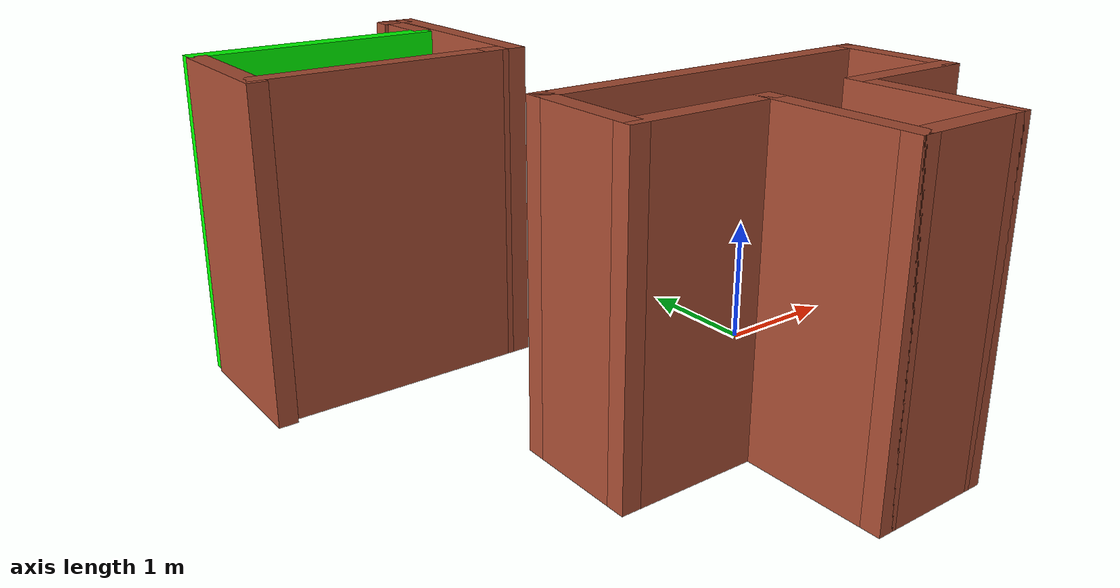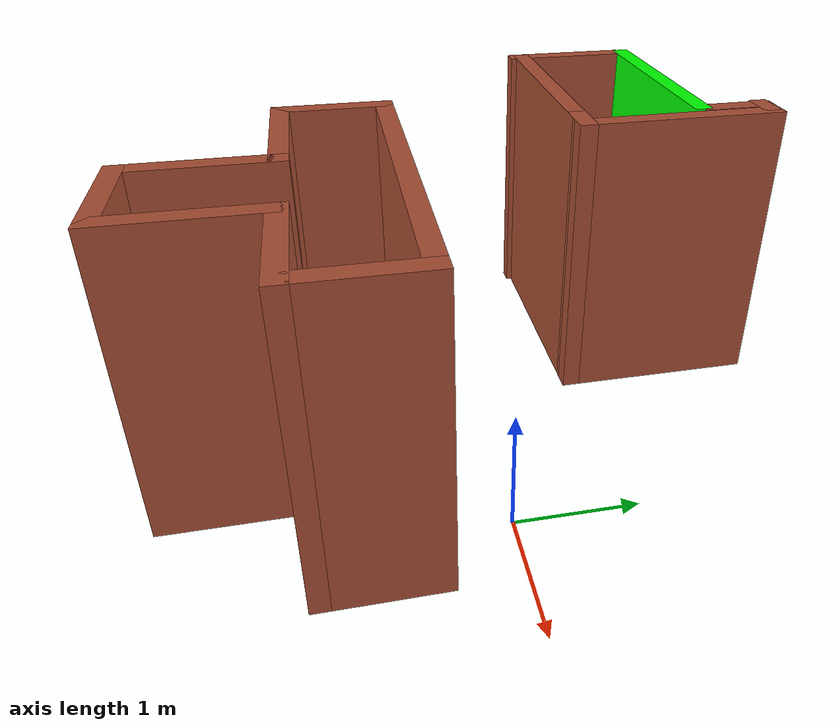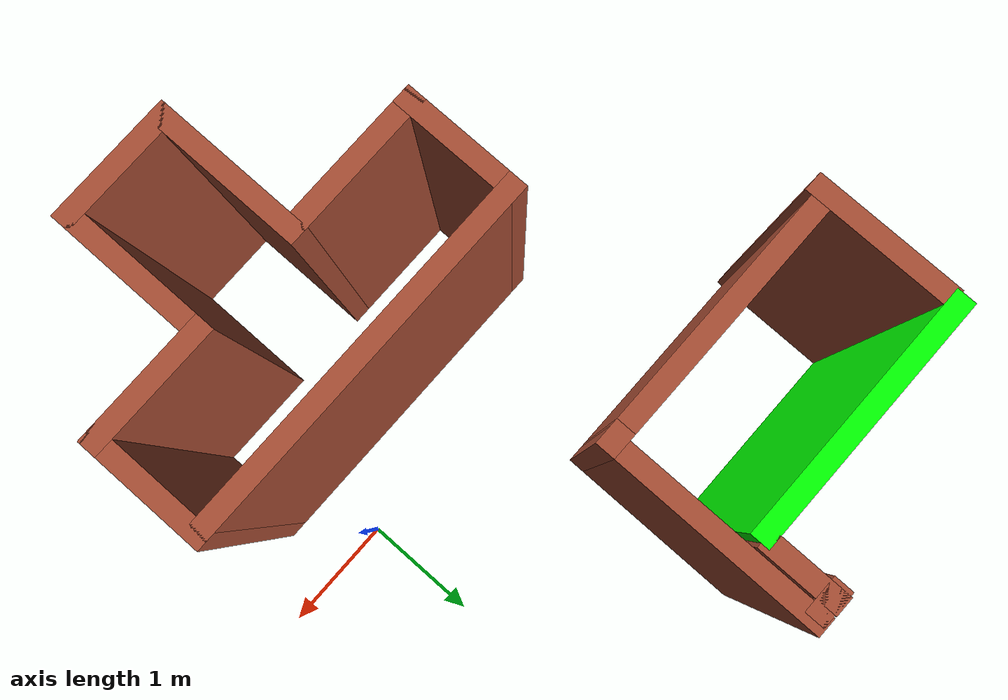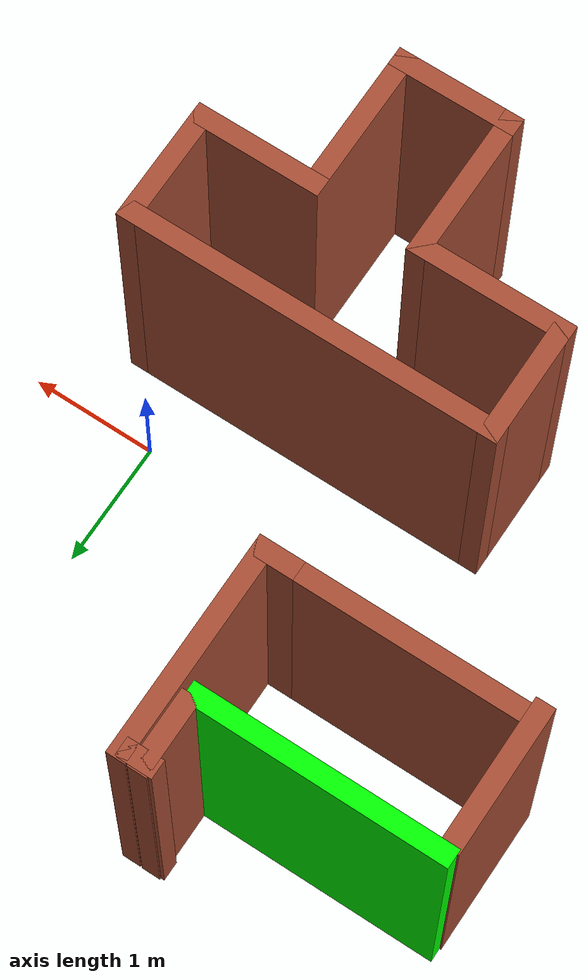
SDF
<?xml version='1.0'?>
<sdf version='1.7'>
  <model name='Floating'>
    <link name='Wall_17'>
      <pose>-1.30573 -1.98114 0 0 0 -1.5708</pose>
      <self_collide>0</self_collide>
      <enable_wind>0</enable_wind>
      <kinematic>0</kinematic>
      <visual name='Wall_17_Visual'>
        <pose>0 0 1.25 0 -0 0</pose>
        <geometry>
          <box>
            <size>1.25 0.15 2.5</size>
          </box>
        </geometry>
        <material>
          <script>
            <uri>file://media/materials/scripts/gazebo.material</uri>
            <name>Gazebo/Bricks</name>
          </script>
          <ambient>1 1 1 1</ambient>
          <shader type='pixel'/>
        </material>
        <meta>
          <layer>0</layer>
        </meta>
        <transparency>0</transparency>
        <cast_shadows>1</cast_shadows>
      </visual>
      <collision name='Wall_17_Collision'>
        <laser_retro>0</laser_retro>
        <max_contacts>10</max_contacts>
        <pose>0 0 1.25 0 -0 0</pose>
        <geometry>
          <box>
            <size>1.25 0.15 2.5</size>
          </box>
        </geometry>
        <surface>
          <friction>
            <ode>
              <mu>1</mu>
              <mu2>1</mu2>
              <fdir1>0 0 0</fdir1>
              <slip1>0</slip1>
              <slip2>0</slip2>
            </ode>
            <torsional>
              <coefficient>1</coefficient>
              <patch_radius>0</patch_radius>
              <surface_radius>0</surface_radius>
              <use_patch_radius>1</use_patch_radius>
              <ode>
                <slip>0</slip>
              </ode>
            </torsional>
          </friction>
          <bounce>
            <restitution_coefficient>0</restitution_coefficient>
            <threshold>1e+06</threshold>
          </bounce>
          <contact>
            <collide_without_contact>0</collide_without_contact>
            <collide_without_contact_bitmask>1</collide_without_contact_bitmask>
            <collide_bitmask>1</collide_bitmask>
            <ode>
              <soft_cfm>0</soft_cfm>
              <soft_erp>0.2</soft_erp>
              <kp>1e+13</kp>
              <kd>1</kd>
              <max_vel>0.01</max_vel>
              <min_depth>0</min_depth>
            </ode>
            <bullet>
              <split_impulse>1</split_impulse>
              <split_impulse_penetration_threshold>-0.01</split_impulse_penetration_threshold>
              <soft_cfm>0</soft_cfm>
              <soft_erp>0.2</soft_erp>
              <kp>1e+13</kp>
              <kd>1</kd>
            </bullet>
          </contact>
        </surface>
      </collision>
    </link>
    <link name='Wall_18'>
      <pose>-0.880733 -2.53114 0 0 -0 0</pose>
      <self_collide>0</self_collide>
      <enable_wind>0</enable_wind>
      <kinematic>0</kinematic>
      <visual name='Wall_18_Visual'>
        <pose>0 0 1.25 0 -0 0</pose>
        <geometry>
          <box>
            <size>1 0.15 2.5</size>
          </box>
        </geometry>
        <material>
          <script>
            <uri>file://media/materials/scripts/gazebo.material</uri>
            <name>Gazebo/Bricks</name>
          </script>
          <ambient>1 1 1 1</ambient>
          <shader type='pixel'/>
        </material>
        <meta>
          <layer>0</layer>
        </meta>
        <transparency>0</transparency>
        <cast_shadows>1</cast_shadows>
      </visual>
      <collision name='Wall_18_Collision'>
        <laser_retro>0</laser_retro>
        <max_contacts>10</max_contacts>
        <pose>0 0 1.25 0 -0 0</pose>
        <geometry>
          <box>
            <size>1 0.15 2.5</size>
          </box>
        </geometry>
        <surface>
          <friction>
            <ode>
              <mu>1</mu>
              <mu2>1</mu2>
              <fdir1>0 0 0</fdir1>
              <slip1>0</slip1>
              <slip2>0</slip2>
            </ode>
            <torsional>
              <coefficient>1</coefficient>
              <patch_radius>0</patch_radius>
              <surface_radius>0</surface_radius>
              <use_patch_radius>1</use_patch_radius>
              <ode>
                <slip>0</slip>
              </ode>
            </torsional>
          </friction>
          <bounce>
            <restitution_coefficient>0</restitution_coefficient>
            <threshold>1e+06</threshold>
          </bounce>
          <contact>
            <collide_without_contact>0</collide_without_contact>
            <collide_without_contact_bitmask>1</collide_without_contact_bitmask>
            <collide_bitmask>1</collide_bitmask>
            <ode>
              <soft_cfm>0</soft_cfm>
              <soft_erp>0.2</soft_erp>
              <kp>1e+13</kp>
              <kd>1</kd>
              <max_vel>0.01</max_vel>
              <min_depth>0</min_depth>
            </ode>
            <bullet>
              <split_impulse>1</split_impulse>
              <split_impulse_penetration_threshold>-0.01</split_impulse_penetration_threshold>
              <soft_cfm>0</soft_cfm>
              <soft_erp>0.2</soft_erp>
              <kp>1e+13</kp>
              <kd>1</kd>
            </bullet>
          </contact>
        </surface>
      </collision>
    </link>
    <link name='Wall_19'>
      <pose>-0.455733 -1.98114 0 0 -0 1.5708</pose>
      <self_collide>0</self_collide>
      <enable_wind>0</enable_wind>
      <kinematic>0</kinematic>
      <visual name='Wall_19_Visual'>
        <pose>0 0 1.25 0 -0 0</pose>
        <geometry>
          <box>
            <size>1.25 0.15 2.5</size>
          </box>
        </geometry>
        <material>
          <script>
            <uri>file://media/materials/scripts/gazebo.material</uri>
            <name>Gazebo/Bricks</name>
          </script>
          <ambient>1 1 1 1</ambient>
          <shader type='pixel'/>
        </material>
        <meta>
          <layer>0</layer>
        </meta>
        <transparency>0</transparency>
        <cast_shadows>1</cast_shadows>
      </visual>
      <collision name='Wall_19_Collision'>
        <laser_retro>0</laser_retro>
        <max_contacts>10</max_contacts>
        <pose>0 0 1.25 0 -0 0</pose>
        <geometry>
          <box>
            <size>1.25 0.15 2.5</size>
          </box>
        </geometry>
        <surface>
          <friction>
            <ode>
              <mu>1</mu>
              <mu2>1</mu2>
              <fdir1>0 0 0</fdir1>
              <slip1>0</slip1>
              <slip2>0</slip2>
            </ode>
            <torsional>
              <coefficient>1</coefficient>
              <patch_radius>0</patch_radius>
              <surface_radius>0</surface_radius>
              <use_patch_radius>1</use_patch_radius>
              <ode>
                <slip>0</slip>
              </ode>
            </torsional>
          </friction>
          <bounce>
            <restitution_coefficient>0</restitution_coefficient>
            <threshold>1e+06</threshold>
          </bounce>
          <contact>
            <collide_without_contact>0</collide_without_contact>
            <collide_without_contact_bitmask>1</collide_without_contact_bitmask>
            <collide_bitmask>1</collide_bitmask>
            <ode>
              <soft_cfm>0</soft_cfm>
              <soft_erp>0.2</soft_erp>
              <kp>1e+13</kp>
              <kd>1</kd>
              <max_vel>0.01</max_vel>
              <min_depth>0</min_depth>
            </ode>
            <bullet>
              <split_impulse>1</split_impulse>
              <split_impulse_penetration_threshold>-0.01</split_impulse_penetration_threshold>
              <soft_cfm>0</soft_cfm>
              <soft_erp>0.2</soft_erp>
              <kp>1e+13</kp>
              <kd>1</kd>
            </bullet>
          </contact>
        </surface>
      </collision>
    </link>
    <link name='Wall_23'>
      <pose>-1.85573 -1.43114 0 0 -0 3.14159</pose>
      <self_collide>0</self_collide>
      <enable_wind>0</enable_wind>
      <kinematic>0</kinematic>
      <visual name='Wall_23_Visual'>
        <pose>0 0 1.25 0 -0 0</pose>
        <geometry>
          <box>
            <size>1.25 0.15 2.5</size>
          </box>
        </geometry>
        <material>
          <script>
            <uri>file://media/materials/scripts/gazebo.material</uri>
            <name>Gazebo/Bricks</name>
          </script>
          <ambient>1 1 1 1</ambient>
          <shader type='pixel'/>
        </material>
        <meta>
          <layer>0</layer>
        </meta>
        <transparency>0</transparency>
        <cast_shadows>1</cast_shadows>
      </visual>
      <collision name='Wall_23_Collision'>
        <laser_retro>0</laser_retro>
        <max_contacts>10</max_contacts>
        <pose>0 0 1.25 0 -0 0</pose>
        <geometry>
          <box>
            <size>1.25 0.15 2.5</size>
          </box>
        </geometry>
        <surface>
          <friction>
            <ode>
              <mu>1</mu>
              <mu2>1</mu2>
              <fdir1>0 0 0</fdir1>
              <slip1>0</slip1>
              <slip2>0</slip2>
            </ode>
            <torsional>
              <coefficient>1</coefficient>
              <patch_radius>0</patch_radius>
              <surface_radius>0</surface_radius>
              <use_patch_radius>1</use_patch_radius>
              <ode>
                <slip>0</slip>
              </ode>
            </torsional>
          </friction>
          <bounce>
            <restitution_coefficient>0</restitution_coefficient>
            <threshold>1e+06</threshold>
          </bounce>
          <contact>
            <collide_without_contact>0</collide_without_contact>
            <collide_without_contact_bitmask>1</collide_without_contact_bitmask>
            <collide_bitmask>1</collide_bitmask>
            <ode>
              <soft_cfm>0</soft_cfm>
              <soft_erp>0.2</soft_erp>
              <kp>1e+13</kp>
              <kd>1</kd>
              <max_vel>0.01</max_vel>
              <min_depth>0</min_depth>
            </ode>
            <bullet>
              <split_impulse>1</split_impulse>
              <split_impulse_penetration_threshold>-0.01</split_impulse_penetration_threshold>
              <soft_cfm>0</soft_cfm>
              <soft_erp>0.2</soft_erp>
              <kp>1e+13</kp>
              <kd>1</kd>
            </bullet>
          </contact>
        </surface>
      </collision>
    </link>
    <link name='Wall_24'>
      <pose>-2.40573 -1.00614 0 0 -0 1.5708</pose>
      <self_collide>0</self_collide>
      <enable_wind>0</enable_wind>
      <kinematic>0</kinematic>
      <visual name='Wall_24_Visual'>
        <pose>0 0 1.25 0 -0 0</pose>
        <geometry>
          <box>
            <size>1 0.15 2.5</size>
          </box>
        </geometry>
        <material>
          <script>
            <uri>file://media/materials/scripts/gazebo.material</uri>
            <name>Gazebo/Bricks</name>
          </script>
          <ambient>1 1 1 1</ambient>
          <shader type='pixel'/>
        </material>
        <meta>
          <layer>0</layer>
        </meta>
        <transparency>0</transparency>
        <cast_shadows>1</cast_shadows>
      </visual>
      <collision name='Wall_24_Collision'>
        <laser_retro>0</laser_retro>
        <max_contacts>10</max_contacts>
        <pose>0 0 1.25 0 -0 0</pose>
        <geometry>
          <box>
            <size>1 0.15 2.5</size>
          </box>
        </geometry>
        <surface>
          <friction>
            <ode>
              <mu>1</mu>
              <mu2>1</mu2>
              <fdir1>0 0 0</fdir1>
              <slip1>0</slip1>
              <slip2>0</slip2>
            </ode>
            <torsional>
              <coefficient>1</coefficient>
              <patch_radius>0</patch_radius>
              <surface_radius>0</surface_radius>
              <use_patch_radius>1</use_patch_radius>
              <ode>
                <slip>0</slip>
              </ode>
            </torsional>
          </friction>
          <bounce>
            <restitution_coefficient>0</restitution_coefficient>
            <threshold>1e+06</threshold>
          </bounce>
          <contact>
            <collide_without_contact>0</collide_without_contact>
            <collide_without_contact_bitmask>1</collide_without_contact_bitmask>
            <collide_bitmask>1</collide_bitmask>
            <ode>
              <soft_cfm>0</soft_cfm>
              <soft_erp>0.2</soft_erp>
              <kp>1e+13</kp>
              <kd>1</kd>
              <max_vel>0.01</max_vel>
              <min_depth>0</min_depth>
            </ode>
            <bullet>
              <split_impulse>1</split_impulse>
              <split_impulse_penetration_threshold>-0.01</split_impulse_penetration_threshold>
              <soft_cfm>0</soft_cfm>
              <soft_erp>0.2</soft_erp>
              <kp>1e+13</kp>
              <kd>1</kd>
            </bullet>
          </contact>
        </surface>
      </collision>
    </link>
    <link name='Wall_25'>
      <pose>-0.980733 -0.581142 0 0 -0 0</pose>
      <self_collide>0</self_collide>
      <enable_wind>0</enable_wind>
      <kinematic>0</kinematic>
      <visual name='Wall_25_Visual'>
        <pose>0 0 1.25 0 -0 0</pose>
        <geometry>
          <box>
            <size>3 0.15 2.5</size>
          </box>
        </geometry>
        <material>
          <script>
            <uri>file://media/materials/scripts/gazebo.material</uri>
            <name>Gazebo/Bricks</name>
          </script>
          <ambient>1 1 1 1</ambient>
          <shader type='pixel'/>
        </material>
        <meta>
          <layer>0</layer>
        </meta>
        <transparency>0</transparency>
        <cast_shadows>1</cast_shadows>
      </visual>
      <collision name='Wall_25_Collision'>
        <laser_retro>0</laser_retro>
        <max_contacts>10</max_contacts>
        <pose>0 0 1.25 0 -0 0</pose>
        <geometry>
          <box>
            <size>3 0.15 2.5</size>
          </box>
        </geometry>
        <surface>
          <friction>
            <ode>
              <mu>1</mu>
              <mu2>1</mu2>
              <fdir1>0 0 0</fdir1>
              <slip1>0</slip1>
              <slip2>0</slip2>
            </ode>
            <torsional>
              <coefficient>1</coefficient>
              <patch_radius>0</patch_radius>
              <surface_radius>0</surface_radius>
              <use_patch_radius>1</use_patch_radius>
              <ode>
                <slip>0</slip>
              </ode>
            </torsional>
          </friction>
          <bounce>
            <restitution_coefficient>0</restitution_coefficient>
            <threshold>1e+06</threshold>
          </bounce>
          <contact>
            <collide_without_contact>0</collide_without_contact>
            <collide_without_contact_bitmask>1</collide_without_contact_bitmask>
            <collide_bitmask>1</collide_bitmask>
            <ode>
              <soft_cfm>0</soft_cfm>
              <soft_erp>0.2</soft_erp>
              <kp>1e+13</kp>
              <kd>1</kd>
              <max_vel>0.01</max_vel>
              <min_depth>0</min_depth>
            </ode>
            <bullet>
              <split_impulse>1</split_impulse>
              <split_impulse_penetration_threshold>-0.01</split_impulse_penetration_threshold>
              <soft_cfm>0</soft_cfm>
              <soft_erp>0.2</soft_erp>
              <kp>1e+13</kp>
              <kd>1</kd>
            </bullet>
          </contact>
        </surface>
      </collision>
    </link>
    <link name='Wall_26'>
      <pose>0.444267 -1.00614 0 0 0 -1.5708</pose>
      <self_collide>0</self_collide>
      <enable_wind>0</enable_wind>
      <kinematic>0</kinematic>
      <visual name='Wall_26_Visual'>
        <pose>0 0 1.25 0 -0 0</pose>
        <geometry>
          <box>
            <size>1 0.15 2.5</size>
          </box>
        </geometry>
        <material>
          <script>
            <uri>file://media/materials/scripts/gazebo.material</uri>
            <name>Gazebo/Bricks</name>
          </script>
          <ambient>1 1 1 1</ambient>
          <shader type='pixel'/>
        </material>
        <meta>
          <layer>0</layer>
        </meta>
        <transparency>0</transparency>
        <cast_shadows>1</cast_shadows>
      </visual>
      <collision name='Wall_26_Collision'>
        <laser_retro>0</laser_retro>
        <max_contacts>10</max_contacts>
        <pose>0 0 1.25 0 -0 0</pose>
        <geometry>
          <box>
            <size>1 0.15 2.5</size>
          </box>
        </geometry>
        <surface>
          <friction>
            <ode>
              <mu>1</mu>
              <mu2>1</mu2>
              <fdir1>0 0 0</fdir1>
              <slip1>0</slip1>
              <slip2>0</slip2>
            </ode>
            <torsional>
              <coefficient>1</coefficient>
              <patch_radius>0</patch_radius>
              <surface_radius>0</surface_radius>
              <use_patch_radius>1</use_patch_radius>
              <ode>
                <slip>0</slip>
              </ode>
            </torsional>
          </friction>
          <bounce>
            <restitution_coefficient>0</restitution_coefficient>
            <threshold>1e+06</threshold>
          </bounce>
          <contact>
            <collide_without_contact>0</collide_without_contact>
            <collide_without_contact_bitmask>1</collide_without_contact_bitmask>
            <collide_bitmask>1</collide_bitmask>
            <ode>
              <soft_cfm>0</soft_cfm>
              <soft_erp>0.2</soft_erp>
              <kp>1e+13</kp>
              <kd>1</kd>
              <max_vel>0.01</max_vel>
              <min_depth>0</min_depth>
            </ode>
            <bullet>
              <split_impulse>1</split_impulse>
              <split_impulse_penetration_threshold>-0.01</split_impulse_penetration_threshold>
              <soft_cfm>0</soft_cfm>
              <soft_erp>0.2</soft_erp>
              <kp>1e+13</kp>
              <kd>1</kd>
            </bullet>
          </contact>
        </surface>
      </collision>
    </link>
    <link name='Wall_27'>
      <pose>-0.005733 -1.43114 0 0 -0 3.14159</pose>
      <self_collide>0</self_collide>
      <enable_wind>0</enable_wind>
      <kinematic>0</kinematic>
      <visual name='Wall_27_Visual'>
        <pose>0 0 1.25 0 -0 0</pose>
        <geometry>
          <box>
            <size>1.05 0.15 2.5</size>
          </box>
        </geometry>
        <material>
          <script>
            <uri>file://media/materials/scripts/gazebo.material</uri>
            <name>Gazebo/Bricks</name>
          </script>
          <ambient>1 1 1 1</ambient>
          <shader type='pixel'/>
        </material>
        <meta>
          <layer>0</layer>
        </meta>
        <transparency>0</transparency>
        <cast_shadows>1</cast_shadows>
      </visual>
      <collision name='Wall_27_Collision'>
        <laser_retro>0</laser_retro>
        <max_contacts>10</max_contacts>
        <pose>0 0 1.25 0 -0 0</pose>
        <geometry>
          <box>
            <size>1.05 0.15 2.5</size>
          </box>
        </geometry>
        <surface>
          <friction>
            <ode>
              <mu>1</mu>
              <mu2>1</mu2>
              <fdir1>0 0 0</fdir1>
              <slip1>0</slip1>
              <slip2>0</slip2>
            </ode>
            <torsional>
              <coefficient>1</coefficient>
              <patch_radius>0</patch_radius>
              <surface_radius>0</surface_radius>
              <use_patch_radius>1</use_patch_radius>
              <ode>
                <slip>0</slip>
              </ode>
            </torsional>
          </friction>
          <bounce>
            <restitution_coefficient>0</restitution_coefficient>
            <threshold>1e+06</threshold>
          </bounce>
          <contact>
            <collide_without_contact>0</collide_without_contact>
            <collide_without_contact_bitmask>1</collide_without_contact_bitmask>
            <collide_bitmask>1</collide_bitmask>
            <ode>
              <soft_cfm>0</soft_cfm>
              <soft_erp>0.2</soft_erp>
              <kp>1e+13</kp>
              <kd>1</kd>
              <max_vel>0.01</max_vel>
              <min_depth>0</min_depth>
            </ode>
            <bullet>
              <split_impulse>1</split_impulse>
              <split_impulse_penetration_threshold>-0.01</split_impulse_penetration_threshold>
              <soft_cfm>0</soft_cfm>
              <soft_erp>0.2</soft_erp>
              <kp>1e+13</kp>
              <kd>1</kd>
            </bullet>
          </contact>
        </surface>
      </collision>
    </link>
    <link name='Wall_29'>
      <pose>-2.74574 0.931141 0 0 -0 3.14159</pose>
      <self_collide>0</self_collide>
      <enable_wind>0</enable_wind>
      <kinematic>0</kinematic>
      <visual name='Wall_29_Visual'>
        <pose>0 0 1.25 0 -0 0</pose>
        <geometry>
          <box>
            <size>2 0.15 2.5</size>
          </box>
        </geometry>
        <material>
          <script>
            <uri>file://media/materials/scripts/gazebo.material</uri>
            <name>Gazebo/Bricks</name>
          </script>
          <ambient>1 1 1 1</ambient>
          <shader type='pixel'/>
        </material>
        <meta>
          <layer>0</layer>
        </meta>
        <transparency>0</transparency>
        <cast_shadows>1</cast_shadows>
      </visual>
      <collision name='Wall_29_Collision'>
        <laser_retro>0</laser_retro>
        <max_contacts>10</max_contacts>
        <pose>0 0 1.25 0 -0 0</pose>
        <geometry>
          <box>
            <size>2 0.15 2.5</size>
          </box>
        </geometry>
        <surface>
          <friction>
            <ode>
              <mu>1</mu>
              <mu2>1</mu2>
              <fdir1>0 0 0</fdir1>
              <slip1>0</slip1>
              <slip2>0</slip2>
            </ode>
            <torsional>
              <coefficient>1</coefficient>
              <patch_radius>0</patch_radius>
              <surface_radius>0</surface_radius>
              <use_patch_radius>1</use_patch_radius>
              <ode>
                <slip>0</slip>
              </ode>
            </torsional>
          </friction>
          <bounce>
            <restitution_coefficient>0</restitution_coefficient>
            <threshold>1e+06</threshold>
          </bounce>
          <contact>
            <collide_without_contact>0</collide_without_contact>
            <collide_without_contact_bitmask>1</collide_without_contact_bitmask>
            <collide_bitmask>1</collide_bitmask>
            <ode>
              <soft_cfm>0</soft_cfm>
              <soft_erp>0.2</soft_erp>
              <kp>1e+13</kp>
              <kd>1</kd>
              <max_vel>0.01</max_vel>
              <min_depth>0</min_depth>
            </ode>
            <bullet>
              <split_impulse>1</split_impulse>
              <split_impulse_penetration_threshold>-0.01</split_impulse_penetration_threshold>
              <soft_cfm>0</soft_cfm>
              <soft_erp>0.2</soft_erp>
              <kp>1e+13</kp>
              <kd>1</kd>
            </bullet>
          </contact>
        </surface>
      </collision>
    </link>
    <link name='Wall_33'>
      <pose>-2.7435 1.98202 0 0 -0 0</pose>
      <self_collide>0</self_collide>
      <enable_wind>0</enable_wind>
      <kinematic>0</kinematic>
      <inertial>
        <inertia>
          <ixx>0</ixx>
          <ixy>0</ixy>
          <ixz>0</ixz>
          <iyy>0</iyy>
          <iyz>0</iyz>
          <izz>0</izz>
        </inertia>
        <mass>0</mass>
        <pose>0 0 0 0 -0 0</pose>
      </inertial>
      <visual name='Wall_33_Visual'>
        <pose>0 0 1.25 0 -0 0</pose>
        <geometry>
          <box>
            <size>1.99607 0.15 2.5</size>
          </box>
        </geometry>
        <material>
          <ambient>0 1 0 1</ambient>
          <diffuse>0 1 0 1</diffuse>
          <shader type='pixel'/>
          <script>
            <name>ModelPreview_1::Wall_33::Wall_33_Visual_MATERIAL_</name>
            <uri>__default__</uri>
          </script>
        </material>
        <meta>
          <layer>0</layer>
        </meta>
        <transparency>0</transparency>
        <cast_shadows>1</cast_shadows>
      </visual>
      <collision name='Wall_33_Collision'>
        <laser_retro>0</laser_retro>
        <max_contacts>10</max_contacts>
        <pose>0 0 1.25 0 -0 0</pose>
        <geometry>
          <box>
            <size>1.99607 0.15 2.5</size>
          </box>
        </geometry>
        <surface>
          <friction>
            <ode>
              <mu>1</mu>
              <mu2>1</mu2>
              <fdir1>0 0 0</fdir1>
              <slip1>0</slip1>
              <slip2>0</slip2>
            </ode>
            <torsional>
              <coefficient>1</coefficient>
              <patch_radius>0</patch_radius>
              <surface_radius>0</surface_radius>
              <use_patch_radius>1</use_patch_radius>
              <ode>
                <slip>0</slip>
              </ode>
            </torsional>
          </friction>
          <bounce>
            <restitution_coefficient>0</restitution_coefficient>
            <threshold>1e+06</threshold>
          </bounce>
          <contact>
            <collide_without_contact>0</collide_without_contact>
            <collide_without_contact_bitmask>1</collide_without_contact_bitmask>
            <collide_bitmask>1</collide_bitmask>
            <ode>
              <soft_cfm>0</soft_cfm>
              <soft_erp>0.2</soft_erp>
              <kp>1e+13</kp>
              <kd>1</kd>
              <max_vel>0.01</max_vel>
              <min_depth>0</min_depth>
            </ode>
            <bullet>
              <split_impulse>1</split_impulse>
              <split_impulse_penetration_threshold>-0.01</split_impulse_penetration_threshold>
              <soft_cfm>0</soft_cfm>
              <soft_erp>0.2</soft_erp>
              <kp>1e+13</kp>
              <kd>1</kd>
            </bullet>
          </contact>
        </surface>
      </collision>
    </link>
    <link name='Wall_34'>
      <pose>-1.78428 2.29942 0 0 -0 1.5708</pose>
      <self_collide>0</self_collide>
      <enable_wind>0</enable_wind>
      <kinematic>0</kinematic>
      <inertial>
        <inertia>
          <ixx>0</ixx>
          <ixy>0</ixy>
          <ixz>0</ixz>
          <iyy>0</iyy>
          <iyz>0</iyz>
          <izz>0</izz>
        </inertia>
        <mass>0</mass>
        <pose>0 0 0 0 -0 0</pose>
      </inertial>
      <visual name='Wall_34_Visual'>
        <pose>0 0 1.25 0 -0 0</pose>
        <geometry>
          <box>
            <size>0.616729 0.15 2.5</size>
          </box>
        </geometry>
        <material>
          <script>
            <uri>file://media/materials/scripts/gazebo.material</uri>
            <name>Gazebo/Bricks</name>
          </script>
          <ambient>1 1 1 1</ambient>
          <shader type='pixel'/>
        </material>
        <meta>
          <layer>0</layer>
        </meta>
        <transparency>0</transparency>
        <cast_shadows>1</cast_shadows>
      </visual>
      <collision name='Wall_34_Collision'>
        <laser_retro>0</laser_retro>
        <max_contacts>10</max_contacts>
        <pose>0 0 1.25 0 -0 0</pose>
        <geometry>
          <box>
            <size>0.616729 0.15 2.5</size>
          </box>
        </geometry>
        <surface>
          <friction>
            <ode>
              <mu>1</mu>
              <mu2>1</mu2>
              <fdir1>0 0 0</fdir1>
              <slip1>0</slip1>
              <slip2>0</slip2>
            </ode>
            <torsional>
              <coefficient>1</coefficient>
              <patch_radius>0</patch_radius>
              <surface_radius>0</surface_radius>
              <use_patch_radius>1</use_patch_radius>
              <ode>
                <slip>0</slip>
              </ode>
            </torsional>
          </friction>
          <bounce>
            <restitution_coefficient>0</restitution_coefficient>
            <threshold>1e+06</threshold>
          </bounce>
          <contact>
            <collide_without_contact>0</collide_without_contact>
            <collide_without_contact_bitmask>1</collide_without_contact_bitmask>
            <collide_bitmask>1</collide_bitmask>
            <ode>
              <soft_cfm>0</soft_cfm>
              <soft_erp>0.2</soft_erp>
              <kp>1e+13</kp>
              <kd>1</kd>
              <max_vel>0.01</max_vel>
              <min_depth>0</min_depth>
            </ode>
            <bullet>
              <split_impulse>1</split_impulse>
              <split_impulse_penetration_threshold>-0.01</split_impulse_penetration_threshold>
              <soft_cfm>0</soft_cfm>
              <soft_erp>0.2</soft_erp>
              <kp>1e+13</kp>
              <kd>1</kd>
            </bullet>
          </contact>
        </surface>
      </collision>
    </link>
    <link name='Wall_34_clone'>
      <pose>-3.67842 1.37656 0 0 -0 1.5708</pose>
      <self_collide>0</self_collide>
      <enable_wind>0</enable_wind>
      <kinematic>0</kinematic>
      <inertial>
        <inertia>
          <ixx>0</ixx>
          <ixy>0</ixy>
          <ixz>0</ixz>
          <iyy>0</iyy>
          <iyz>0</iyz>
          <izz>0</izz>
        </inertia>
        <mass>0</mass>
        <pose>0 0 0 0 -0 0</pose>
      </inertial>
      <visual name='Wall_34_Visual'>
        <pose>0 0 1.25 0 -0 0</pose>
        <geometry>
          <box>
            <size>1.14121 0.15 2.5</size>
          </box>
        </geometry>
        <material>
          <script>
            <uri>file://media/materials/scripts/gazebo.material</uri>
            <name>Gazebo/Bricks</name>
          </script>
          <ambient>1 1 1 1</ambient>
          <shader type='pixel'/>
        </material>
        <meta>
          <layer>0</layer>
        </meta>
        <transparency>0</transparency>
        <cast_shadows>1</cast_shadows>
      </visual>
      <collision name='Wall_34_Collision'>
        <laser_retro>0</laser_retro>
        <max_contacts>10</max_contacts>
        <pose>0 0 1.25 0 -0 0</pose>
        <geometry>
          <box>
            <size>1.14121 0.15 2.5</size>
          </box>
        </geometry>
        <surface>
          <friction>
            <ode>
              <mu>1</mu>
              <mu2>1</mu2>
              <fdir1>0 0 0</fdir1>
              <slip1>0</slip1>
              <slip2>0</slip2>
            </ode>
            <torsional>
              <coefficient>1</coefficient>
              <patch_radius>0</patch_radius>
              <surface_radius>0</surface_radius>
              <use_patch_radius>1</use_patch_radius>
              <ode>
                <slip>0</slip>
              </ode>
            </torsional>
          </friction>
          <bounce>
            <restitution_coefficient>0</restitution_coefficient>
            <threshold>1e+06</threshold>
          </bounce>
          <contact>
            <collide_without_contact>0</collide_without_contact>
            <collide_without_contact_bitmask>1</collide_without_contact_bitmask>
            <collide_bitmask>1</collide_bitmask>
            <ode>
              <soft_cfm>0</soft_cfm>
              <soft_erp>0.2</soft_erp>
              <kp>1e+13</kp>
              <kd>1</kd>
              <max_vel>0.01</max_vel>
              <min_depth>0</min_depth>
            </ode>
            <bullet>
              <split_impulse>1</split_impulse>
              <split_impulse_penetration_threshold>-0.01</split_impulse_penetration_threshold>
              <soft_cfm>0</soft_cfm>
              <soft_erp>0.2</soft_erp>
              <kp>1e+13</kp>
              <kd>1</kd>
            </bullet>
          </contact>
        </surface>
      </collision>
    </link>
    <link name='Wall_35'>
      <pose>-1.747 2.52028 0 0 -0 0</pose>
      <self_collide>0</self_collide>
      <enable_wind>0</enable_wind>
      <kinematic>0</kinematic>
      <inertial>
        <inertia>
          <ixx>0</ixx>
          <ixy>0</ixy>
          <ixz>0</ixz>
          <iyy>0</iyy>
          <iyz>0</iyz>
          <izz>0</izz>
        </inertia>
        <mass>0</mass>
        <pose>0 0 0 0 -0 0</pose>
      </inertial>
      <visual name='Wall_35_Visual'>
        <pose>0 0 1.25 0 -0 0</pose>
        <geometry>
          <box>
            <size>0.283069 0.15 2.5</size>
          </box>
        </geometry>
        <material>
          <script>
            <uri>file://media/materials/scripts/gazebo.material</uri>
            <name>Gazebo/Bricks</name>
          </script>
          <ambient>1 1 1 1</ambient>
          <shader type='pixel'/>
        </material>
        <meta>
          <layer>0</layer>
        </meta>
        <transparency>0</transparency>
        <cast_shadows>1</cast_shadows>
      </visual>
      <collision name='Wall_35_Collision'>
        <laser_retro>0</laser_retro>
        <max_contacts>10</max_contacts>
        <pose>0 0 1.25 0 -0 0</pose>
        <geometry>
          <box>
            <size>0.283069 0.15 2.5</size>
          </box>
        </geometry>
        <surface>
          <friction>
            <ode>
              <mu>1</mu>
              <mu2>1</mu2>
              <fdir1>0 0 0</fdir1>
              <slip1>0</slip1>
              <slip2>0</slip2>
            </ode>
            <torsional>
              <coefficient>1</coefficient>
              <patch_radius>0</patch_radius>
              <surface_radius>0</surface_radius>
              <use_patch_radius>1</use_patch_radius>
              <ode>
                <slip>0</slip>
              </ode>
            </torsional>
          </friction>
          <bounce>
            <restitution_coefficient>0</restitution_coefficient>
            <threshold>1e+06</threshold>
          </bounce>
          <contact>
            <collide_without_contact>0</collide_without_contact>
            <collide_without_contact_bitmask>1</collide_without_contact_bitmask>
            <collide_bitmask>1</collide_bitmask>
            <ode>
              <soft_cfm>0</soft_cfm>
              <soft_erp>0.2</soft_erp>
              <kp>1e+13</kp>
              <kd>1</kd>
              <max_vel>0.01</max_vel>
              <min_depth>0</min_depth>
            </ode>
            <bullet>
              <split_impulse>1</split_impulse>
              <split_impulse_penetration_threshold>-0.01</split_impulse_penetration_threshold>
              <soft_cfm>0</soft_cfm>
              <soft_erp>0.2</soft_erp>
              <kp>1e+13</kp>
              <kd>1</kd>
            </bullet>
          </contact>
        </surface>
      </collision>
    </link>
    <link name='Wall_36'>
      <pose>-1.62074 1.73114 0 0 0 -1.5708</pose>
      <self_collide>0</self_collide>
      <enable_wind>0</enable_wind>
      <kinematic>0</kinematic>
      <visual name='Wall_36_Visual'>
        <pose>0 0 1.25 0 -0 0</pose>
        <geometry>
          <box>
            <size>1.75 0.15 2.5</size>
          </box>
        </geometry>
        <material>
          <script>
            <uri>file://media/materials/scripts/gazebo.material</uri>
            <name>Gazebo/Bricks</name>
          </script>
          <ambient>1 1 1 1</ambient>
          <shader type='pixel'/>
        </material>
        <meta>
          <layer>0</layer>
        </meta>
        <transparency>0</transparency>
        <cast_shadows>1</cast_shadows>
      </visual>
      <collision name='Wall_36_Collision'>
        <laser_retro>0</laser_retro>
        <max_contacts>10</max_contacts>
        <pose>0 0 1.25 0 -0 0</pose>
        <geometry>
          <box>
            <size>1.75 0.15 2.5</size>
          </box>
        </geometry>
        <surface>
          <friction>
            <ode>
              <mu>1</mu>
              <mu2>1</mu2>
              <fdir1>0 0 0</fdir1>
              <slip1>0</slip1>
              <slip2>0</slip2>
            </ode>
            <torsional>
              <coefficient>1</coefficient>
              <patch_radius>0</patch_radius>
              <surface_radius>0</surface_radius>
              <use_patch_radius>1</use_patch_radius>
              <ode>
                <slip>0</slip>
              </ode>
            </torsional>
          </friction>
          <bounce>
            <restitution_coefficient>0</restitution_coefficient>
            <threshold>1e+06</threshold>
          </bounce>
          <contact>
            <collide_without_contact>0</collide_without_contact>
            <collide_without_contact_bitmask>1</collide_without_contact_bitmask>
            <collide_bitmask>1</collide_bitmask>
            <ode>
              <soft_cfm>0</soft_cfm>
              <soft_erp>0.2</soft_erp>
              <kp>1e+13</kp>
              <kd>1</kd>
              <max_vel>0.01</max_vel>
              <min_depth>0</min_depth>
            </ode>
            <bullet>
              <split_impulse>1</split_impulse>
              <split_impulse_penetration_threshold>-0.01</split_impulse_penetration_threshold>
              <soft_cfm>0</soft_cfm>
              <soft_erp>0.2</soft_erp>
              <kp>1e+13</kp>
              <kd>1</kd>
            </bullet>
          </contact>
        </surface>
      </collision>
    </link>
    <link name='Wall_37'>
      <pose>-1.72074 0.931141 0 0 -0 3.14159</pose>
      <self_collide>0</self_collide>
      <enable_wind>0</enable_wind>
      <kinematic>0</kinematic>
      <visual name='Wall_37_Visual'>
        <pose>0 0 1.25 0 -0 0</pose>
        <geometry>
          <box>
            <size>0.35 0.15 2.5</size>
          </box>
        </geometry>
        <material>
          <script>
            <uri>file://media/materials/scripts/gazebo.material</uri>
            <name>Gazebo/Bricks</name>
          </script>
          <ambient>1 1 1 1</ambient>
          <shader type='pixel'/>
        </material>
        <meta>
          <layer>0</layer>
        </meta>
        <transparency>0</transparency>
        <cast_shadows>1</cast_shadows>
      </visual>
      <collision name='Wall_37_Collision'>
        <laser_retro>0</laser_retro>
        <max_contacts>10</max_contacts>
        <pose>0 0 1.25 0 -0 0</pose>
        <geometry>
          <box>
            <size>0.35 0.15 2.5</size>
          </box>
        </geometry>
        <surface>
          <friction>
            <ode>
              <mu>1</mu>
              <mu2>1</mu2>
              <fdir1>0 0 0</fdir1>
              <slip1>0</slip1>
              <slip2>0</slip2>
            </ode>
            <torsional>
              <coefficient>1</coefficient>
              <patch_radius>0</patch_radius>
              <surface_radius>0</surface_radius>
              <use_patch_radius>1</use_patch_radius>
              <ode>
                <slip>0</slip>
              </ode>
            </torsional>
          </friction>
          <bounce>
            <restitution_coefficient>0</restitution_coefficient>
            <threshold>1e+06</threshold>
          </bounce>
          <contact>
            <collide_without_contact>0</collide_without_contact>
            <collide_without_contact_bitmask>1</collide_without_contact_bitmask>
            <collide_bitmask>1</collide_bitmask>
            <ode>
              <soft_cfm>0</soft_cfm>
              <soft_erp>0.2</soft_erp>
              <kp>1e+13</kp>
              <kd>1</kd>
              <max_vel>0.01</max_vel>
              <min_depth>0</min_depth>
            </ode>
            <bullet>
              <split_impulse>1</split_impulse>
              <split_impulse_penetration_threshold>-0.01</split_impulse_penetration_threshold>
              <soft_cfm>0</soft_cfm>
              <soft_erp>0.2</soft_erp>
              <kp>1e+13</kp>
              <kd>1</kd>
            </bullet>
          </contact>
        </surface>
      </collision>
    </link>
    <static>1</static>
    <allow_auto_disable>1</allow_auto_disable>
  </model>
</sdf>
